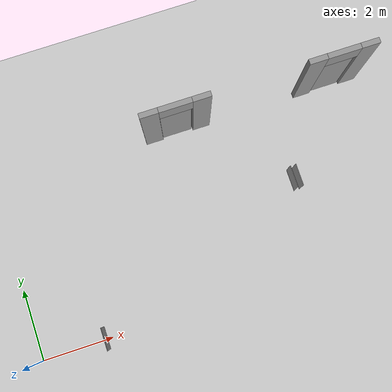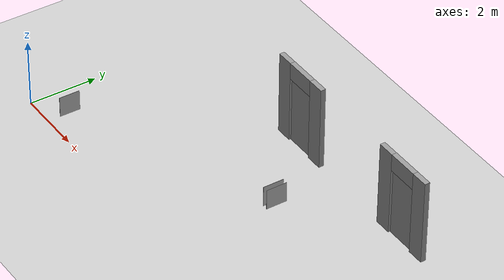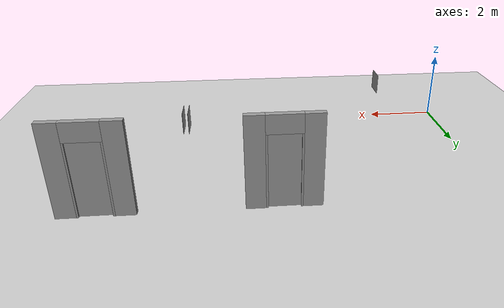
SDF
<sdf version="1.7">
 <world name="default">
  <model name="ground_plane">
   <static>1</static>
   <link name="link">
    <collision name="collision">
     <geometry><plane><normal>0 0 1</normal><size>100 100</size></plane></geometry>
     <surface><friction><ode><mu>100</mu><mu2>50</mu2></ode></friction></surface>
    </collision>
    <visual name="visual">
     <cast_shadows>0</cast_shadows>
     <geometry><plane><normal>0 0 1</normal><size>100 100</size></plane></geometry>
     <material>
      <script><uri>file://media/materials/scripts/gazebo.material</uri><name>Gazebo/Grey</name></script>
     </material>
    </visual>
   </link>
  </model>
  <model name="wall_with_door_no_gap_2">
   <link name="Wall">
    <pose>0 0 0 0 -4e-06 0</pose>
    <inertial>
     <inertia><ixx>1</ixx><ixy>0</ixy><ixz>0</ixz><iyy>1</iyy><iyz>0</iyz><izz>1</izz></inertia>
     <mass>1</mass>
    </inertial>
    <visual name="Wall_Visual_4">
     <pose>0.425 -0.055 1 0 -0 0</pose>
     <geometry><box><size>0.05 0.04 2</size></box></geometry>
     <material>
      <script><uri>file://media/materials/scripts/gazebo.material</uri><name>Gazebo/Grey</name></script>
      <ambient>1 1 1 1</ambient>
      <shader type="pixel"><normal_map>__default__</normal_map></shader>
      <emissive>0 0 0 1</emissive>
      <diffuse>0.7 0.7 0.7 1</diffuse>
      <specular>0.01 0.01 0.01 1</specular>
     </material>
     <meta><layer>0</layer></meta>
    </visual>
    <visual name="Wall_Visual_0">
     <pose>-0.7 0 1.25 0 -0 0</pose>
     <geometry><box><size>0.5 0.15 2.5</size></box></geometry>
     <material>
      <script><uri>file://media/materials/scripts/gazebo.material</uri><name>Gazebo/Grey</name></script>
      <ambient>1 1 1 1</ambient>
      <shader type="pixel"><normal_map>__default__</normal_map></shader>
      <emissive>0 0 0 1</emissive>
      <diffuse>0.7 0.7 0.7 1</diffuse>
      <specular>0.01 0.01 0.01 1</specular>
     </material>
     <meta><layer>0</layer></meta>
    </visual>
    <visual name="Wall_visual_3">
     <pose>-0.425 -0.055 1 0 -0 0</pose>
     <geometry><box><size>0.05 0.04 2</size></box></geometry>
     <material>
      <script><uri>file://media/materials/scripts/gazebo.material</uri><name>Gazebo/Grey</name></script>
      <ambient>1 1 1 1</ambient>
      <shader type="pixel"><normal_map>__default__</normal_map></shader>
      <emissive>0 0 0 1</emissive>
      <diffuse>0.7 0.7 0.7 1</diffuse>
      <specular>0.01 0.01 0.01 1</specular>
     </material>
     <meta><layer>0</layer></meta>
    </visual>
    <visual name="Wall_Visual_1">
     <pose>0.7 0 1.25 0 -0 0</pose>
     <geometry><box><size>0.5 0.15 2.5</size></box></geometry>
     <material>
      <script><uri>file://media/materials/scripts/gazebo.material</uri><name>Gazebo/Grey</name></script>
      <ambient>1 1 1 1</ambient>
      <shader type="pixel"><normal_map>__default__</normal_map></shader>
      <emissive>0 0 0 1</emissive>
      <diffuse>0.7 0.7 0.7 1</diffuse>
      <specular>0.01 0.01 0.01 1</specular>
     </material>
     <meta><layer>0</layer></meta>
    </visual>
    <visual name="Wall_Visual_2">
     <pose>0 0 2.25 0 -0 0</pose>
     <geometry><box><size>0.9 0.15 0.5</size></box></geometry>
     <material>
      <script><uri>file://media/materials/scripts/gazebo.material</uri><name>Gazebo/Grey</name></script>
      <ambient>1 1 1 1</ambient>
      <shader type="pixel"><normal_map>__default__</normal_map></shader>
      <emissive>0 0 0 1</emissive>
      <diffuse>0.7 0.7 0.7 1</diffuse>
      <specular>0.01 0.01 0.01 1</specular>
     </material>
     <meta><layer>0</layer></meta>
    </visual>
    <collision name="Wall_Collision_3">
     <pose>-0.425 -0.055 1 0 -0 0</pose>
     <geometry><box><size>0.05 0.04 2</size></box></geometry>
     <surface>
      <friction>
       <ode><mu>1</mu><mu2>1</mu2><fdir1>0 0 0</fdir1><slip1>0</slip1><slip2>0</slip2></ode>
       <torsional>
        <coefficient>1</coefficient>
        <patch_radius>0</patch_radius>
        <surface_radius>0</surface_radius>
        <use_patch_radius>1</use_patch_radius>
        <ode><slip>0</slip></ode>
       </torsional>
      </friction>
      <bounce><restitution_coefficient>0</restitution_coefficient><threshold>1e+06</threshold></bounce>
      <contact>
       <collide_without_contact>0</collide_without_contact>
       <collide_without_contact_bitmask>1</collide_without_contact_bitmask>
       <collide_bitmask>1</collide_bitmask>
       <ode>
        <soft_cfm>0</soft_cfm>
        <soft_erp>0.2</soft_erp>
        <kp>1e+13</kp>
        <kd>1</kd>
        <max_vel>0.01</max_vel>
        <min_depth>0</min_depth>
       </ode>
       <bullet>
        <split_impulse>1</split_impulse>
        <split_impulse_penetration_threshold>-0.01</split_impulse_penetration_threshold>
        <soft_cfm>0</soft_cfm>
        <soft_erp>0.2</soft_erp>
        <kp>1e+13</kp>
        <kd>1</kd>
       </bullet>
      </contact>
     </surface>
    </collision>
    <collision name="Wall_Collision_4">
     <pose>0.425 -0.055 1 0 -0 0</pose>
     <geometry><box><size>0.05 0.04 2</size></box></geometry>
     <surface>
      <friction>
       <ode><mu>1</mu><mu2>1</mu2><fdir1>0 0 0</fdir1><slip1>0</slip1><slip2>0</slip2></ode>
       <torsional>
        <coefficient>1</coefficient>
        <patch_radius>0</patch_radius>
        <surface_radius>0</surface_radius>
        <use_patch_radius>1</use_patch_radius>
        <ode><slip>0</slip></ode>
       </torsional>
      </friction>
      <bounce><restitution_coefficient>0</restitution_coefficient><threshold>1e+06</threshold></bounce>
      <contact>
       <collide_without_contact>0</collide_without_contact>
       <collide_without_contact_bitmask>1</collide_without_contact_bitmask>
       <collide_bitmask>1</collide_bitmask>
       <ode>
        <soft_cfm>0</soft_cfm>
        <soft_erp>0.2</soft_erp>
        <kp>1e+13</kp>
        <kd>1</kd>
        <max_vel>0.01</max_vel>
        <min_depth>0</min_depth>
       </ode>
       <bullet>
        <split_impulse>1</split_impulse>
        <split_impulse_penetration_threshold>-0.01</split_impulse_penetration_threshold>
        <soft_cfm>0</soft_cfm>
        <soft_erp>0.2</soft_erp>
        <kp>1e+13</kp>
        <kd>1</kd>
       </bullet>
      </contact>
     </surface>
    </collision>
    <collision name="Wall_Collision_1">
     <pose>0.7 0 1.25 0 -0 0</pose>
     <geometry><box><size>0.5 0.15 2.5</size></box></geometry>
     <surface>
      <friction>
       <ode><mu>1</mu><mu2>1</mu2><fdir1>0 0 0</fdir1><slip1>0</slip1><slip2>0</slip2></ode>
       <torsional>
        <coefficient>1</coefficient>
        <patch_radius>0</patch_radius>
        <surface_radius>0</surface_radius>
        <use_patch_radius>1</use_patch_radius>
        <ode><slip>0</slip></ode>
       </torsional>
      </friction>
      <bounce><restitution_coefficient>0</restitution_coefficient><threshold>1e+06</threshold></bounce>
      <contact>
       <collide_without_contact>0</collide_without_contact>
       <collide_without_contact_bitmask>1</collide_without_contact_bitmask>
       <collide_bitmask>1</collide_bitmask>
       <ode>
        <soft_cfm>0</soft_cfm>
        <soft_erp>0.2</soft_erp>
        <kp>1e+13</kp>
        <kd>1</kd>
        <max_vel>0.01</max_vel>
        <min_depth>0</min_depth>
       </ode>
       <bullet>
        <split_impulse>1</split_impulse>
        <split_impulse_penetration_threshold>-0.01</split_impulse_penetration_threshold>
        <soft_cfm>0</soft_cfm>
        <soft_erp>0.2</soft_erp>
        <kp>1e+13</kp>
        <kd>1</kd>
       </bullet>
      </contact>
     </surface>
    </collision>
    <collision name="Wall_Collision_0">
     <pose>-0.7 0 1.25 0 -0 0</pose>
     <geometry><box><size>0.5 0.15 2.5</size></box></geometry>
     <surface>
      <friction>
       <ode><mu>1</mu><mu2>1</mu2><fdir1>0 0 0</fdir1><slip1>0</slip1><slip2>0</slip2></ode>
       <torsional>
        <coefficient>1</coefficient>
        <patch_radius>0</patch_radius>
        <surface_radius>0</surface_radius>
        <use_patch_radius>1</use_patch_radius>
        <ode><slip>0</slip></ode>
       </torsional>
      </friction>
      <bounce><restitution_coefficient>0</restitution_coefficient><threshold>1e+06</threshold></bounce>
      <contact>
       <collide_without_contact>0</collide_without_contact>
       <collide_without_contact_bitmask>1</collide_without_contact_bitmask>
       <collide_bitmask>1</collide_bitmask>
       <ode>
        <soft_cfm>0</soft_cfm>
        <soft_erp>0.2</soft_erp>
        <kp>1e+13</kp>
        <kd>1</kd>
        <max_vel>0.01</max_vel>
        <min_depth>0</min_depth>
       </ode>
       <bullet>
        <split_impulse>1</split_impulse>
        <split_impulse_penetration_threshold>-0.01</split_impulse_penetration_threshold>
        <soft_cfm>0</soft_cfm>
        <soft_erp>0.2</soft_erp>
        <kp>1e+13</kp>
        <kd>1</kd>
       </bullet>
      </contact>
     </surface>
    </collision>
    <collision name="Wall_Collision_2">
     <pose>0 0 2.25 0 -0 0</pose>
     <geometry><box><size>0.9 0.15 0.5</size></box></geometry>
     <surface>
      <friction>
       <ode><mu>1</mu><mu2>1</mu2><fdir1>0 0 0</fdir1><slip1>0</slip1><slip2>0</slip2></ode>
       <torsional>
        <coefficient>1</coefficient>
        <patch_radius>0</patch_radius>
        <surface_radius>0</surface_radius>
        <use_patch_radius>1</use_patch_radius>
        <ode><slip>0</slip></ode>
       </torsional>
      </friction>
      <bounce><restitution_coefficient>0</restitution_coefficient><threshold>1e+06</threshold></bounce>
      <contact>
       <collide_without_contact>0</collide_without_contact>
       <collide_without_contact_bitmask>1</collide_without_contact_bitmask>
       <collide_bitmask>1</collide_bitmask>
       <ode>
        <soft_cfm>0</soft_cfm>
        <soft_erp>0.2</soft_erp>
        <kp>1e+13</kp>
        <kd>1</kd>
        <max_vel>0.01</max_vel>
        <min_depth>0</min_depth>
       </ode>
       <bullet>
        <split_impulse>1</split_impulse>
        <split_impulse_penetration_threshold>-0.01</split_impulse_penetration_threshold>
        <soft_cfm>0</soft_cfm>
        <soft_erp>0.2</soft_erp>
        <kp>1e+13</kp>
        <kd>1</kd>
       </bullet>
      </contact>
     </surface>
    </collision>
    <static>1</static>
   </link>
   <link name="door">
    <inertial>
     <mass>1</mass>
     <inertia>
      <ixx>0.166667</ixx>
      <ixy>0</ixy>
      <ixz>0</ixz>
      <iyy>0.166667</iyy>
      <iyz>0</iyz>
      <izz>0.166667</izz>
     </inertia>
    </inertial>
    <pose>-0 -0 1 0 -4e-06 0</pose>
    <visual name="visual">
     <pose>0.01 0 0 0 -0 0</pose>
     <geometry><box><size>0.86 0.04 2</size></box></geometry>
     <material>
      <lighting>1</lighting>
      <script><uri>file://media/materials/scripts/gazebo.material</uri><name>Gazebo/Grey</name></script>
      <shader type="pixel"><normal_map>__default__</normal_map></shader>
      <ambient>0.3 0.3 0.3 1</ambient>
      <diffuse>0.7 0.7 0.7 1</diffuse>
      <specular>0.01 0.01 0.01 1</specular>
      <emissive>0 0 0 1</emissive>
     </material>
    </visual>
    <collision name="collision">
     <pose>0.01 0 0 0 -0 0</pose>
     <geometry><box><size>0.84 0.04 2</size></box></geometry>
     <surface>
      <friction>
       <ode><mu>1</mu><mu2>1</mu2><fdir1>0 0 0</fdir1><slip1>0</slip1><slip2>0</slip2></ode>
       <torsional>
        <coefficient>1</coefficient>
        <patch_radius>0</patch_radius>
        <surface_radius>0</surface_radius>
        <use_patch_radius>1</use_patch_radius>
        <ode><slip>0</slip></ode>
       </torsional>
      </friction>
      <bounce><restitution_coefficient>0</restitution_coefficient><threshold>1e+06</threshold></bounce>
      <contact>
       <collide_without_contact>0</collide_without_contact>
       <collide_without_contact_bitmask>1</collide_without_contact_bitmask>
       <collide_bitmask>1</collide_bitmask>
       <ode>
        <soft_cfm>0</soft_cfm>
        <soft_erp>0.2</soft_erp>
        <kp>1e+13</kp>
        <kd>1</kd>
        <max_vel>0.01</max_vel>
        <min_depth>0</min_depth>
       </ode>
       <bullet>
        <split_impulse>1</split_impulse>
        <split_impulse_penetration_threshold>-0.01</split_impulse_penetration_threshold>
        <soft_cfm>0</soft_cfm>
        <soft_erp>0.2</soft_erp>
        <kp>1e+13</kp>
        <kd>1</kd>
       </bullet>
      </contact>
     </surface>
    </collision>
    <static>0</static>
   </link>
   <joint name="Door_JOINT" type="revolute">
    <parent>Wall</parent>
    <child>door</child>
    <pose>-0.43 0 0 0 -0 0</pose>
    <axis>
     <xyz>0 0 1</xyz>
     <limit><lower>0</lower><upper>1.57</upper><effort>-1</effort><velocity>-1</velocity></limit>
     <dynamics>
      <spring_reference>0</spring_reference>
      <spring_stiffness>0</spring_stiffness>
      <damping>0</damping>
      <friction>0</friction>
     </dynamics>
    </axis>
    <physics>
     <ode><limit><cfm>0</cfm><erp>0.2</erp></limit><suspension><cfm>0</cfm><erp>0.2</erp></suspension></ode>
    </physics>
   </joint>
   <joint name="WALL_FIXED" type="fixed"><parent>world</parent><child>Wall</child></joint>
   <plugin name="wall_and_door_plugin" filename="libDoorControlPlugin.so">
    <initial_position>1.57</initial_position>
    <switch_flag>true</switch_flag>
    <switch_duration>15</switch_duration>
   </plugin>
   <static>0</static>
   <pose>5.5 5 0 0 -0 3.14</pose>
  </model>
  <model name="wall_with_door_no_gap_3">
   <link name="Wall">
    <pose>0 0 0 0 -4e-06 0</pose>
    <inertial>
     <inertia><ixx>1</ixx><ixy>0</ixy><ixz>0</ixz><iyy>1</iyy><iyz>0</iyz><izz>1</izz></inertia>
     <mass>1</mass>
    </inertial>
    <visual name="Wall_Visual_4">
     <pose>0.425 -0.055 1 0 -0 0</pose>
     <geometry><box><size>0.05 0.04 2</size></box></geometry>
     <material>
      <script><uri>file://media/materials/scripts/gazebo.material</uri><name>Gazebo/Grey</name></script>
      <ambient>1 1 1 1</ambient>
      <shader type="pixel"><normal_map>__default__</normal_map></shader>
      <emissive>0 0 0 1</emissive>
      <diffuse>0.7 0.7 0.7 1</diffuse>
      <specular>0.01 0.01 0.01 1</specular>
     </material>
     <meta><layer>0</layer></meta>
    </visual>
    <visual name="Wall_Visual_0">
     <pose>-0.7 0 1.25 0 -0 0</pose>
     <geometry><box><size>0.5 0.15 2.5</size></box></geometry>
     <material>
      <script><uri>file://media/materials/scripts/gazebo.material</uri><name>Gazebo/Grey</name></script>
      <ambient>1 1 1 1</ambient>
      <shader type="pixel"><normal_map>__default__</normal_map></shader>
      <emissive>0 0 0 1</emissive>
      <diffuse>0.7 0.7 0.7 1</diffuse>
      <specular>0.01 0.01 0.01 1</specular>
     </material>
     <meta><layer>0</layer></meta>
    </visual>
    <visual name="Wall_visual_3">
     <pose>-0.425 -0.055 1 0 -0 0</pose>
     <geometry><box><size>0.05 0.04 2</size></box></geometry>
     <material>
      <script><uri>file://media/materials/scripts/gazebo.material</uri><name>Gazebo/Grey</name></script>
      <ambient>1 1 1 1</ambient>
      <shader type="pixel"><normal_map>__default__</normal_map></shader>
      <emissive>0 0 0 1</emissive>
      <diffuse>0.7 0.7 0.7 1</diffuse>
      <specular>0.01 0.01 0.01 1</specular>
     </material>
     <meta><layer>0</layer></meta>
    </visual>
    <visual name="Wall_Visual_1">
     <pose>0.7 0 1.25 0 -0 0</pose>
     <geometry><box><size>0.5 0.15 2.5</size></box></geometry>
     <material>
      <script><uri>file://media/materials/scripts/gazebo.material</uri><name>Gazebo/Grey</name></script>
      <ambient>1 1 1 1</ambient>
      <shader type="pixel"><normal_map>__default__</normal_map></shader>
      <emissive>0 0 0 1</emissive>
      <diffuse>0.7 0.7 0.7 1</diffuse>
      <specular>0.01 0.01 0.01 1</specular>
     </material>
     <meta><layer>0</layer></meta>
    </visual>
    <visual name="Wall_Visual_2">
     <pose>0 0 2.25 0 -0 0</pose>
     <geometry><box><size>0.9 0.15 0.5</size></box></geometry>
     <material>
      <script><uri>file://media/materials/scripts/gazebo.material</uri><name>Gazebo/Grey</name></script>
      <ambient>1 1 1 1</ambient>
      <shader type="pixel"><normal_map>__default__</normal_map></shader>
      <emissive>0 0 0 1</emissive>
      <diffuse>0.7 0.7 0.7 1</diffuse>
      <specular>0.01 0.01 0.01 1</specular>
     </material>
     <meta><layer>0</layer></meta>
    </visual>
    <collision name="Wall_Collision_3">
     <pose>-0.425 -0.055 1 0 -0 0</pose>
     <geometry><box><size>0.05 0.04 2</size></box></geometry>
     <surface>
      <friction>
       <ode><mu>1</mu><mu2>1</mu2><fdir1>0 0 0</fdir1><slip1>0</slip1><slip2>0</slip2></ode>
       <torsional>
        <coefficient>1</coefficient>
        <patch_radius>0</patch_radius>
        <surface_radius>0</surface_radius>
        <use_patch_radius>1</use_patch_radius>
        <ode><slip>0</slip></ode>
       </torsional>
      </friction>
      <bounce><restitution_coefficient>0</restitution_coefficient><threshold>1e+06</threshold></bounce>
      <contact>
       <collide_without_contact>0</collide_without_contact>
       <collide_without_contact_bitmask>1</collide_without_contact_bitmask>
       <collide_bitmask>1</collide_bitmask>
       <ode>
        <soft_cfm>0</soft_cfm>
        <soft_erp>0.2</soft_erp>
        <kp>1e+13</kp>
        <kd>1</kd>
        <max_vel>0.01</max_vel>
        <min_depth>0</min_depth>
       </ode>
       <bullet>
        <split_impulse>1</split_impulse>
        <split_impulse_penetration_threshold>-0.01</split_impulse_penetration_threshold>
        <soft_cfm>0</soft_cfm>
        <soft_erp>0.2</soft_erp>
        <kp>1e+13</kp>
        <kd>1</kd>
       </bullet>
      </contact>
     </surface>
    </collision>
    <collision name="Wall_Collision_4">
     <pose>0.425 -0.055 1 0 -0 0</pose>
     <geometry><box><size>0.05 0.04 2</size></box></geometry>
     <surface>
      <friction>
       <ode><mu>1</mu><mu2>1</mu2><fdir1>0 0 0</fdir1><slip1>0</slip1><slip2>0</slip2></ode>
       <torsional>
        <coefficient>1</coefficient>
        <patch_radius>0</patch_radius>
        <surface_radius>0</surface_radius>
        <use_patch_radius>1</use_patch_radius>
        <ode><slip>0</slip></ode>
       </torsional>
      </friction>
      <bounce><restitution_coefficient>0</restitution_coefficient><threshold>1e+06</threshold></bounce>
      <contact>
       <collide_without_contact>0</collide_without_contact>
       <collide_without_contact_bitmask>1</collide_without_contact_bitmask>
       <collide_bitmask>1</collide_bitmask>
       <ode>
        <soft_cfm>0</soft_cfm>
        <soft_erp>0.2</soft_erp>
        <kp>1e+13</kp>
        <kd>1</kd>
        <max_vel>0.01</max_vel>
        <min_depth>0</min_depth>
       </ode>
       <bullet>
        <split_impulse>1</split_impulse>
        <split_impulse_penetration_threshold>-0.01</split_impulse_penetration_threshold>
        <soft_cfm>0</soft_cfm>
        <soft_erp>0.2</soft_erp>
        <kp>1e+13</kp>
        <kd>1</kd>
       </bullet>
      </contact>
     </surface>
    </collision>
    <collision name="Wall_Collision_1">
     <pose>0.7 0 1.25 0 -0 0</pose>
     <geometry><box><size>0.5 0.15 2.5</size></box></geometry>
     <surface>
      <friction>
       <ode><mu>1</mu><mu2>1</mu2><fdir1>0 0 0</fdir1><slip1>0</slip1><slip2>0</slip2></ode>
       <torsional>
        <coefficient>1</coefficient>
        <patch_radius>0</patch_radius>
        <surface_radius>0</surface_radius>
        <use_patch_radius>1</use_patch_radius>
        <ode><slip>0</slip></ode>
       </torsional>
      </friction>
      <bounce><restitution_coefficient>0</restitution_coefficient><threshold>1e+06</threshold></bounce>
      <contact>
       <collide_without_contact>0</collide_without_contact>
       <collide_without_contact_bitmask>1</collide_without_contact_bitmask>
       <collide_bitmask>1</collide_bitmask>
       <ode>
        <soft_cfm>0</soft_cfm>
        <soft_erp>0.2</soft_erp>
        <kp>1e+13</kp>
        <kd>1</kd>
        <max_vel>0.01</max_vel>
        <min_depth>0</min_depth>
       </ode>
       <bullet>
        <split_impulse>1</split_impulse>
        <split_impulse_penetration_threshold>-0.01</split_impulse_penetration_threshold>
        <soft_cfm>0</soft_cfm>
        <soft_erp>0.2</soft_erp>
        <kp>1e+13</kp>
        <kd>1</kd>
       </bullet>
      </contact>
     </surface>
    </collision>
    <collision name="Wall_Collision_0">
     <pose>-0.7 0 1.25 0 -0 0</pose>
     <geometry><box><size>0.5 0.15 2.5</size></box></geometry>
     <surface>
      <friction>
       <ode><mu>1</mu><mu2>1</mu2><fdir1>0 0 0</fdir1><slip1>0</slip1><slip2>0</slip2></ode>
       <torsional>
        <coefficient>1</coefficient>
        <patch_radius>0</patch_radius>
        <surface_radius>0</surface_radius>
        <use_patch_radius>1</use_patch_radius>
        <ode><slip>0</slip></ode>
       </torsional>
      </friction>
      <bounce><restitution_coefficient>0</restitution_coefficient><threshold>1e+06</threshold></bounce>
      <contact>
       <collide_without_contact>0</collide_without_contact>
       <collide_without_contact_bitmask>1</collide_without_contact_bitmask>
       <collide_bitmask>1</collide_bitmask>
       <ode>
        <soft_cfm>0</soft_cfm>
        <soft_erp>0.2</soft_erp>
        <kp>1e+13</kp>
        <kd>1</kd>
        <max_vel>0.01</max_vel>
        <min_depth>0</min_depth>
       </ode>
       <bullet>
        <split_impulse>1</split_impulse>
        <split_impulse_penetration_threshold>-0.01</split_impulse_penetration_threshold>
        <soft_cfm>0</soft_cfm>
        <soft_erp>0.2</soft_erp>
        <kp>1e+13</kp>
        <kd>1</kd>
       </bullet>
      </contact>
     </surface>
    </collision>
    <collision name="Wall_Collision_2">
     <pose>0 0 2.25 0 -0 0</pose>
     <geometry><box><size>0.9 0.15 0.5</size></box></geometry>
     <surface>
      <friction>
       <ode><mu>1</mu><mu2>1</mu2><fdir1>0 0 0</fdir1><slip1>0</slip1><slip2>0</slip2></ode>
       <torsional>
        <coefficient>1</coefficient>
        <patch_radius>0</patch_radius>
        <surface_radius>0</surface_radius>
        <use_patch_radius>1</use_patch_radius>
        <ode><slip>0</slip></ode>
       </torsional>
      </friction>
      <bounce><restitution_coefficient>0</restitution_coefficient><threshold>1e+06</threshold></bounce>
      <contact>
       <collide_without_contact>0</collide_without_contact>
       <collide_without_contact_bitmask>1</collide_without_contact_bitmask>
       <collide_bitmask>1</collide_bitmask>
       <ode>
        <soft_cfm>0</soft_cfm>
        <soft_erp>0.2</soft_erp>
        <kp>1e+13</kp>
        <kd>1</kd>
        <max_vel>0.01</max_vel>
        <min_depth>0</min_depth>
       </ode>
       <bullet>
        <split_impulse>1</split_impulse>
        <split_impulse_penetration_threshold>-0.01</split_impulse_penetration_threshold>
        <soft_cfm>0</soft_cfm>
        <soft_erp>0.2</soft_erp>
        <kp>1e+13</kp>
        <kd>1</kd>
       </bullet>
      </contact>
     </surface>
    </collision>
    <static>1</static>
   </link>
   <link name="door">
    <inertial>
     <mass>1</mass>
     <inertia>
      <ixx>0.166667</ixx>
      <ixy>0</ixy>
      <ixz>0</ixz>
      <iyy>0.166667</iyy>
      <iyz>0</iyz>
      <izz>0.166667</izz>
     </inertia>
    </inertial>
    <pose>-0 -0 1 0 -4e-06 0</pose>
    <visual name="visual">
     <pose>0.01 0 0 0 -0 0</pose>
     <geometry><box><size>0.86 0.04 2</size></box></geometry>
     <material>
      <lighting>1</lighting>
      <script><uri>file://media/materials/scripts/gazebo.material</uri><name>Gazebo/Grey</name></script>
      <shader type="pixel"><normal_map>__default__</normal_map></shader>
      <ambient>0.3 0.3 0.3 1</ambient>
      <diffuse>0.7 0.7 0.7 1</diffuse>
      <specular>0.01 0.01 0.01 1</specular>
      <emissive>0 0 0 1</emissive>
     </material>
    </visual>
    <collision name="collision">
     <pose>0.01 0 0 0 -0 0</pose>
     <geometry><box><size>0.84 0.04 2</size></box></geometry>
     <surface>
      <friction>
       <ode><mu>1</mu><mu2>1</mu2><fdir1>0 0 0</fdir1><slip1>0</slip1><slip2>0</slip2></ode>
       <torsional>
        <coefficient>1</coefficient>
        <patch_radius>0</patch_radius>
        <surface_radius>0</surface_radius>
        <use_patch_radius>1</use_patch_radius>
        <ode><slip>0</slip></ode>
       </torsional>
      </friction>
      <bounce><restitution_coefficient>0</restitution_coefficient><threshold>1e+06</threshold></bounce>
      <contact>
       <collide_without_contact>0</collide_without_contact>
       <collide_without_contact_bitmask>1</collide_without_contact_bitmask>
       <collide_bitmask>1</collide_bitmask>
       <ode>
        <soft_cfm>0</soft_cfm>
        <soft_erp>0.2</soft_erp>
        <kp>1e+13</kp>
        <kd>1</kd>
        <max_vel>0.01</max_vel>
        <min_depth>0</min_depth>
       </ode>
       <bullet>
        <split_impulse>1</split_impulse>
        <split_impulse_penetration_threshold>-0.01</split_impulse_penetration_threshold>
        <soft_cfm>0</soft_cfm>
        <soft_erp>0.2</soft_erp>
        <kp>1e+13</kp>
        <kd>1</kd>
       </bullet>
      </contact>
     </surface>
    </collision>
    <static>0</static>
   </link>
   <joint name="Door_JOINT" type="revolute">
    <parent>Wall</parent>
    <child>door</child>
    <pose>-0.43 0 0 0 -0 0</pose>
    <axis>
     <xyz>0 0 1</xyz>
     <limit><lower>0</lower><upper>1.57</upper><effort>-1</effort><velocity>-1</velocity></limit>
     <dynamics>
      <spring_reference>0</spring_reference>
      <spring_stiffness>0</spring_stiffness>
      <damping>0</damping>
      <friction>0</friction>
     </dynamics>
    </axis>
    <physics>
     <ode><limit><cfm>0</cfm><erp>0.2</erp></limit><suspension><cfm>0</cfm><erp>0.2</erp></suspension></ode>
    </physics>
   </joint>
   <joint name="WALL_FIXED" type="fixed"><parent>world</parent><child>Wall</child></joint>
   <plugin name="wall_and_door_plugin" filename="libDoorControlPlugin.so">
    <initial_position>0</initial_position>
    <switch_flag>true</switch_flag>
    <switch_duration>15</switch_duration>
   </plugin>
   <static>0</static>
   <pose>10 5 0 0 -0 3.14</pose>
  </model>
  <model name="static_apriltag_7">
   <link name="link">
    <pose>0 0 0 0 1.57 0</pose>
    <inertial>
     <mass>0.39</mass>
     <inertia><ixx>0.00058</ixx><ixy>0</ixy><ixz>0</ixz><iyy>0.00058</iyy><iyz>0</iyz><izz>0.00019</izz></inertia>
    </inertial>
    <collision name="collision"><geometry><box><size>0.6 0.6 0.01</size></box></geometry></collision>
    <visual name="visual">
     <geometry><box><size>0.6 0.6 0.01</size></box></geometry>
     <material>
      <script>
       <uri>model://apriltag/materials/scripts</uri>
       <uri>model://apriltag/materials/textures</uri>
       <name>apriltag/Diffuse7</name>
      </script>
     </material>
    </visual>
    <gravity>0</gravity>
   </link>
   <pose>8.075 2.5 1.25 0 -0 0</pose>
   <static>1</static>
   <pose>3.12393 4.47604 0 0 -0 0</pose>
  </model>
  <model name="static_apriltag_8">
   <link name="link">
    <pose>0 0 0 0 1.57 0</pose>
    <inertial>
     <mass>0.39</mass>
     <inertia><ixx>0.00058</ixx><ixy>0</ixy><ixz>0</ixz><iyy>0.00058</iyy><iyz>0</iyz><izz>0.00019</izz></inertia>
    </inertial>
    <collision name="collision"><geometry><box><size>0.6 0.6 0.01</size></box></geometry></collision>
    <visual name="visual">
     <geometry><box><size>0.6 0.6 0.01</size></box></geometry>
     <material>
      <script>
       <uri>model://apriltag/materials/scripts</uri>
       <uri>model://apriltag/materials/textures</uri>
       <name>apriltag/Diffuse7</name>
      </script>
     </material>
    </visual>
    <gravity>0</gravity>
   </link>
   <pose>7.925 2.5 1.25 0 -0 0</pose>
   <static>1</static>
   <pose>3.12393 4.47604 0 0 -0 0</pose>
  </model>
  <model name="static_apriltag_9">
   <link name="link">
    <pose>0 0 0 0 1.57 0</pose>
    <inertial>
     <mass>0.39</mass>
     <inertia><ixx>0.00058</ixx><ixy>0</ixy><ixz>0</ixz><iyy>0.00058</iyy><iyz>0</iyz><izz>0.00019</izz></inertia>
    </inertial>
    <collision name="collision"><geometry><box><size>0.6 0.6 0.01</size></box></geometry></collision>
    <visual name="visual">
     <geometry><box><size>0.6 0.6 0.01</size></box></geometry>
     <material>
      <script>
       <uri>model://apriltag/materials/scripts</uri>
       <uri>model://apriltag/materials/textures</uri>
       <name>apriltag/Diffuse7</name>
      </script>
     </material>
    </visual>
    <gravity>0</gravity>
   </link>
   <pose>2 0.075 1.25 0 -0 0</pose>
   <static>1</static>
   <pose>3.12393 4.47604 0 0 -0 0</pose>
  </model>
 </world>
</sdf>
